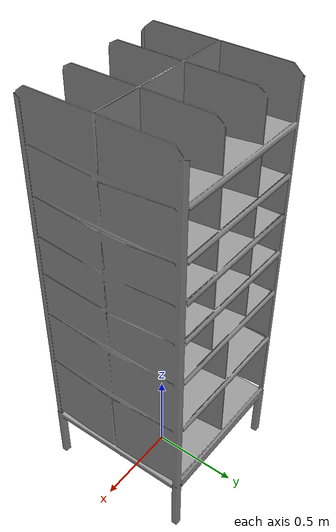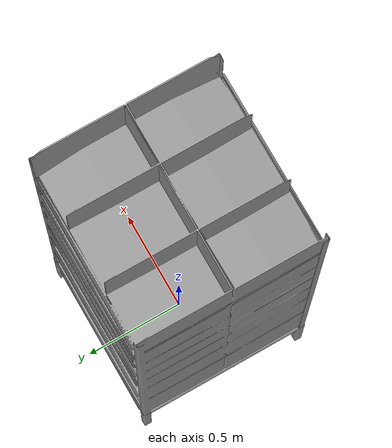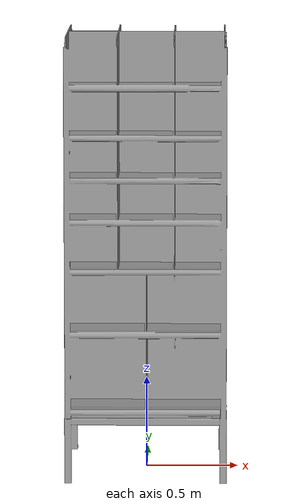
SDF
<?xml version="1.0" ?>
<sdf version="1.4">
  <model name="Amazon Pod">
    <link name="pod_link">
      <inertial>
        <pose>0.0 0.0 1.2045 0 0 0</pose>
        <mass>76.26</mass>
        <inertia>
          <ixx>47</ixx>
          <ixy>-0.003456</ixy>
          <ixz>0.001474</ixz>
          <izz>13.075</izz>
          <iyz>-0.014439</iyz>
          <iyy>47</iyy>
        </inertia>
      </inertial>

      <visual name="pod_visual">
        <pose>0 0 0 1.5707 0 0 </pose>
        <material>
          <script>
            <uri>file://media/materials/scripts/gazebo.material</uri>
            <name>Gazebo/Grey</name>
          </script>
        </material>
        <geometry>
          <mesh>
            <uri>model://kiva_pod/meshes/pod_lowres.stl</uri>
          </mesh>
        </geometry>
      </visual>

      <collision name="pod_collision">
        <pose>0 0 0 1.5707 0 0</pose>
        <geometry>
          <mesh>
            <uri>model://kiva_pod/meshes/pod_lowres.stl</uri>
          </mesh>
        </geometry>
        <surface>
          <friction>
            <ode>
              <mu>0.8</mu>
              <mu2>0.8</mu2>
              <fdir1>0.0 0.0 0.0</fdir1>
              <slip1>1.0</slip1>
              <slip2>1.0</slip2>
            </ode>
          </friction>
        </surface>
      </collision>

    </link>
  </model>
</sdf>
